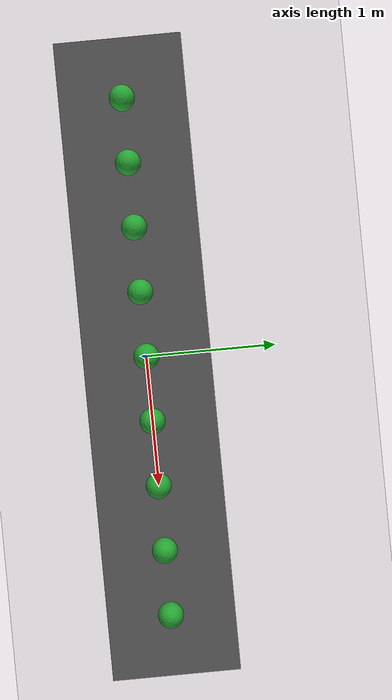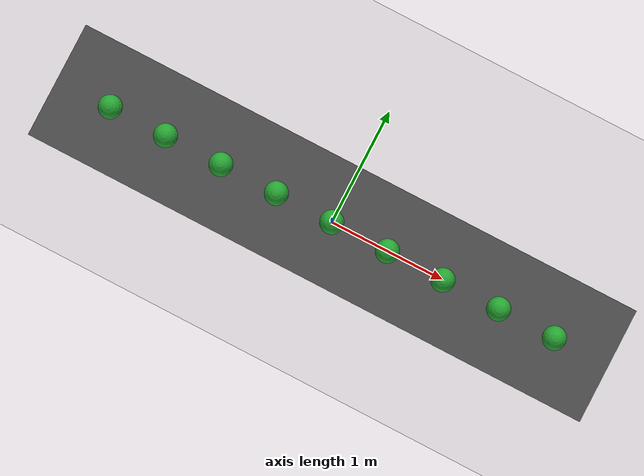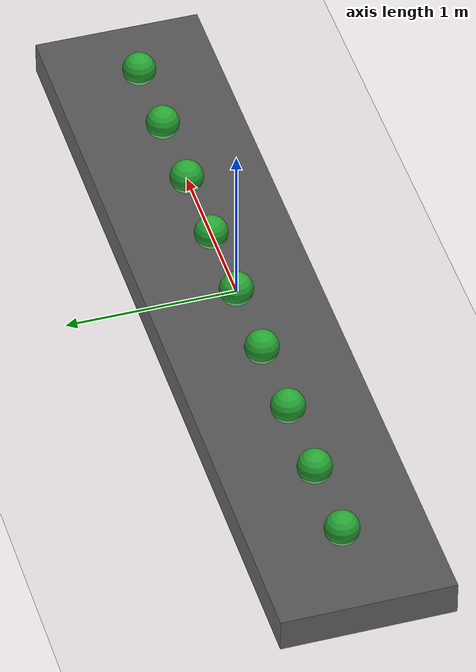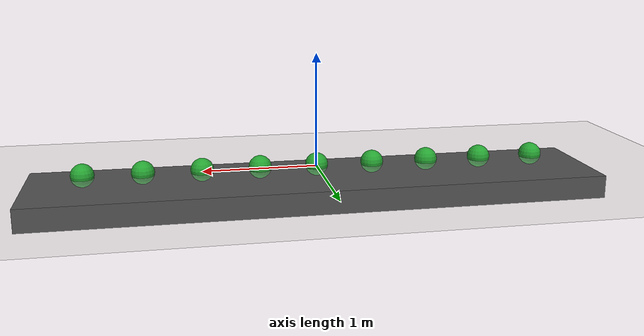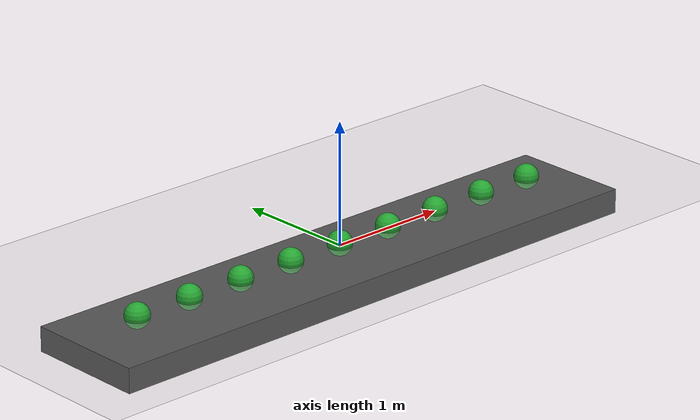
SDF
<?xml version="1.0" ?>
<sdf version="1.5">
  <world name="default">

    <!-- A global light source -->
    <include>
      <uri>model://sun</uri>
    </include>

    <!-- A ground plane -->
    <include>
      <uri>model://ground_plane</uri>
    </include>

    <!-- Testing the automatic population of objects -->
      <model name="pop1">
        <include>
          <static>true</static>
          <uri>model://ex_plant1</uri>
        </include>
      </model>
      <pose>0 0 0 0 0 0</pose>

  </world>
</sdf>

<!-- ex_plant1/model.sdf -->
<sdf version='1.6'>
  <model name='ex_plant1'>
    <link name='link_0'>
      <pose frame=''>0 0 -0.18 0 -0 0</pose>
      <inertial>
        <mass>100</mass>
        <inertia>
          <ixx>0.166667</ixx>
          <ixy>0</ixy>
          <ixz>0</ixz>
          <iyy>0.166667</iyy>
          <iyz>0</iyz>
          <izz>0.166667</izz>
        </inertia>
        <pose frame=''>0 0 0 0 -0 0</pose>
      </inertial>
      <gravity>1</gravity>
      <self_collide>0</self_collide>
      <kinematic>0</kinematic>
      <visual name='visual'>
        <pose frame=''>0 0 0 0 -0 0</pose>
        <geometry>
          <box>
            <size>5 1 0.2</size>
          </box>
        </geometry>
        <material>
          <lighting>1</lighting>
          <script>
            <uri>file://media/materials/scripts/gazebo.material</uri>
            <name>Gazebo/Black</name>
          </script>
          <shader type='pixel'>
            <normal_map>__default__</normal_map>
          </shader>
          <ambient>0.3 0.3 0.3 1</ambient>
          <diffuse>0.7 0.7 0.7 1</diffuse>
          <specular>0.01 0.01 0.01 1</specular>
          <emissive>0 0 0 1</emissive>
        </material>
        <transparency>0</transparency>
        <cast_shadows>1</cast_shadows>
      </visual>
      <collision name='collision'>
        <laser_retro>0</laser_retro>
        <max_contacts>10</max_contacts>
        <pose frame=''>0 0 0 0 -0 0</pose>
        <geometry>
          <box>
            <size>5 1 0.2</size>
          </box>
        </geometry>
        <surface>
          <friction>
            <ode>
              <mu>1</mu>
              <mu2>1</mu2>
              <fdir1>0 0 0</fdir1>
              <slip1>0</slip1>
              <slip2>0</slip2>
            </ode>
            <torsional>
              <coefficient>1</coefficient>
              <patch_radius>0</patch_radius>
              <surface_radius>0</surface_radius>
              <use_patch_radius>1</use_patch_radius>
              <ode>
                <slip>0</slip>
              </ode>
            </torsional>
          </friction>
          <bounce>
            <restitution_coefficient>0</restitution_coefficient>
            <threshold>1e+06</threshold>
          </bounce>
          <contact>
            <collide_without_contact>0</collide_without_contact>
            <collide_without_contact_bitmask>1</collide_without_contact_bitmask>
            <collide_bitmask>1</collide_bitmask>
            <ode>
              <soft_cfm>0</soft_cfm>
              <soft_erp>0.2</soft_erp>
              <kp>1e+13</kp>
              <kd>1</kd>
              <max_vel>0.01</max_vel>
              <min_depth>0</min_depth>
            </ode>
            <bullet>
              <split_impulse>1</split_impulse>
              <split_impulse_penetration_threshold>-0.01</split_impulse_penetration_threshold>
              <soft_cfm>0</soft_cfm>
              <soft_erp>0.2</soft_erp>
              <kp>1e+13</kp>
              <kd>1</kd>
            </bullet>
          </contact>
        </surface>
      </collision>
    </link>
    <link name='link_1'>
      <pose frame=''>-2 0 0.02 0 -0 0</pose>
      <inertial>
        <mass>1</mass>
        <inertia>
          <ixx>0.1</ixx>
          <ixy>0</ixy>
          <ixz>0</ixz>
          <iyy>0.1</iyy>
          <iyz>0</iyz>
          <izz>0.1</izz>
        </inertia>
        <pose frame=''>0 0 0 0 -0 0</pose>
      </inertial>
      <gravity>1</gravity>
      <self_collide>0</self_collide>
      <kinematic>0</kinematic>
      <visual name='visual'>
        <pose frame=''>0 0 0 0 -0 0</pose>
        <geometry>
          <sphere>
            <radius>0.1</radius>
          </sphere>
        </geometry>
        <material>
          <lighting>1</lighting>
          <script>
            <uri>file://media/materials/scripts/gazebo.material</uri>
            <name>Gazebo/Green</name>
          </script>
          <shader type='pixel'>
            <normal_map>__default__</normal_map>
          </shader>
          <ambient>0.3 0.3 0.3 1</ambient>
          <diffuse>0.7 0.7 0.7 1</diffuse>
          <specular>0.01 0.01 0.01 1</specular>
          <emissive>0 0 0 1</emissive>
        </material>
        <transparency>0</transparency>
        <cast_shadows>1</cast_shadows>
      </visual>
      <collision name='collision'>
        <laser_retro>0</laser_retro>
        <max_contacts>10</max_contacts>
        <pose frame=''>0 0 0 0 -0 0</pose>
        <geometry>
          <sphere>
            <radius>0.1</radius>
          </sphere>
        </geometry>
        <surface>
          <friction>
            <ode>
              <mu>1</mu>
              <mu2>1</mu2>
              <fdir1>0 0 0</fdir1>
              <slip1>0</slip1>
              <slip2>0</slip2>
            </ode>
            <torsional>
              <coefficient>1</coefficient>
              <patch_radius>0</patch_radius>
              <surface_radius>0</surface_radius>
              <use_patch_radius>1</use_patch_radius>
              <ode>
                <slip>0</slip>
              </ode>
            </torsional>
          </friction>
          <bounce>
            <restitution_coefficient>0</restitution_coefficient>
            <threshold>1e+06</threshold>
          </bounce>
          <contact>
            <collide_without_contact>0</collide_without_contact>
            <collide_without_contact_bitmask>1</collide_without_contact_bitmask>
            <collide_bitmask>1</collide_bitmask>
            <ode>
              <soft_cfm>0</soft_cfm>
              <soft_erp>0.2</soft_erp>
              <kp>1e+13</kp>
              <kd>1</kd>
              <max_vel>0.01</max_vel>
              <min_depth>0</min_depth>
            </ode>
            <bullet>
              <split_impulse>1</split_impulse>
              <split_impulse_penetration_threshold>-0.01</split_impulse_penetration_threshold>
              <soft_cfm>0</soft_cfm>
              <soft_erp>0.2</soft_erp>
              <kp>1e+13</kp>
              <kd>1</kd>
            </bullet>
          </contact>
        </surface>
      </collision>
    </link>
    <link name='link_1_clone'>
      <pose frame=''>-1.5 0 0.02 0 -0 0</pose>
      <inertial>
        <mass>1</mass>
        <inertia>
          <ixx>0.1</ixx>
          <ixy>0</ixy>
          <ixz>0</ixz>
          <iyy>0.1</iyy>
          <iyz>0</iyz>
          <izz>0.1</izz>
        </inertia>
        <pose frame=''>0 0 0 0 -0 0</pose>
      </inertial>
      <self_collide>0</self_collide>
      <kinematic>0</kinematic>
      <gravity>1</gravity>
      <visual name='visual'>
        <pose frame=''>0 0 0 0 -0 0</pose>
        <geometry>
          <sphere>
            <radius>0.1</radius>
          </sphere>
        </geometry>
        <material>
          <lighting>1</lighting>
          <script>
            <uri>file://media/materials/scripts/gazebo.material</uri>
            <name>Gazebo/Green</name>
          </script>
          <shader type='pixel'>
            <normal_map>__default__</normal_map>
          </shader>
          <ambient>0.3 0.3 0.3 1</ambient>
          <diffuse>0.7 0.7 0.7 1</diffuse>
          <specular>0.01 0.01 0.01 1</specular>
          <emissive>0 0 0 1</emissive>
        </material>
        <transparency>0</transparency>
        <cast_shadows>1</cast_shadows>
      </visual>
      <collision name='collision'>
        <laser_retro>0</laser_retro>
        <max_contacts>10</max_contacts>
        <pose frame=''>0 0 0 0 -0 0</pose>
        <geometry>
          <sphere>
            <radius>0.1</radius>
          </sphere>
        </geometry>
        <surface>
          <friction>
            <ode>
              <mu>1</mu>
              <mu2>1</mu2>
              <fdir1>0 0 0</fdir1>
              <slip1>0</slip1>
              <slip2>0</slip2>
            </ode>
            <torsional>
              <coefficient>1</coefficient>
              <patch_radius>0</patch_radius>
              <surface_radius>0</surface_radius>
              <use_patch_radius>1</use_patch_radius>
              <ode>
                <slip>0</slip>
              </ode>
            </torsional>
          </friction>
          <bounce>
            <restitution_coefficient>0</restitution_coefficient>
            <threshold>1e+06</threshold>
          </bounce>
          <contact>
            <collide_without_contact>0</collide_without_contact>
            <collide_without_contact_bitmask>1</collide_without_contact_bitmask>
            <collide_bitmask>1</collide_bitmask>
            <ode>
              <soft_cfm>0</soft_cfm>
              <soft_erp>0.2</soft_erp>
              <kp>1e+13</kp>
              <kd>1</kd>
              <max_vel>0.01</max_vel>
              <min_depth>0</min_depth>
            </ode>
            <bullet>
              <split_impulse>1</split_impulse>
              <split_impulse_penetration_threshold>-0.01</split_impulse_penetration_threshold>
              <soft_cfm>0</soft_cfm>
              <soft_erp>0.2</soft_erp>
              <kp>1e+13</kp>
              <kd>1</kd>
            </bullet>
          </contact>
        </surface>
      </collision>
    </link>
    <link name='link_1_clone_0'>
      <pose frame=''>-1 0 0.02 0 -0 0</pose>
      <inertial>
        <mass>1</mass>
        <inertia>
          <ixx>0.1</ixx>
          <ixy>0</ixy>
          <ixz>0</ixz>
          <iyy>0.1</iyy>
          <iyz>0</iyz>
          <izz>0.1</izz>
        </inertia>
        <pose frame=''>0 0 0 0 -0 0</pose>
      </inertial>
      <self_collide>0</self_collide>
      <kinematic>0</kinematic>
      <gravity>1</gravity>
      <visual name='visual'>
        <pose frame=''>0 0 0 0 -0 0</pose>
        <geometry>
          <sphere>
            <radius>0.1</radius>
          </sphere>
        </geometry>
        <material>
          <lighting>1</lighting>
          <script>
            <uri>file://media/materials/scripts/gazebo.material</uri>
            <name>Gazebo/Green</name>
          </script>
          <shader type='pixel'>
            <normal_map>__default__</normal_map>
          </shader>
          <ambient>0.3 0.3 0.3 1</ambient>
          <diffuse>0.7 0.7 0.7 1</diffuse>
          <specular>0.01 0.01 0.01 1</specular>
          <emissive>0 0 0 1</emissive>
        </material>
        <transparency>0</transparency>
        <cast_shadows>1</cast_shadows>
      </visual>
      <collision name='collision'>
        <laser_retro>0</laser_retro>
        <max_contacts>10</max_contacts>
        <pose frame=''>0 0 0 0 -0 0</pose>
        <geometry>
          <sphere>
            <radius>0.1</radius>
          </sphere>
        </geometry>
        <surface>
          <friction>
            <ode>
              <mu>1</mu>
              <mu2>1</mu2>
              <fdir1>0 0 0</fdir1>
              <slip1>0</slip1>
              <slip2>0</slip2>
            </ode>
            <torsional>
              <coefficient>1</coefficient>
              <patch_radius>0</patch_radius>
              <surface_radius>0</surface_radius>
              <use_patch_radius>1</use_patch_radius>
              <ode>
                <slip>0</slip>
              </ode>
            </torsional>
          </friction>
          <bounce>
            <restitution_coefficient>0</restitution_coefficient>
            <threshold>1e+06</threshold>
          </bounce>
          <contact>
            <collide_without_contact>0</collide_without_contact>
            <collide_without_contact_bitmask>1</collide_without_contact_bitmask>
            <collide_bitmask>1</collide_bitmask>
            <ode>
              <soft_cfm>0</soft_cfm>
              <soft_erp>0.2</soft_erp>
              <kp>1e+13</kp>
              <kd>1</kd>
              <max_vel>0.01</max_vel>
              <min_depth>0</min_depth>
            </ode>
            <bullet>
              <split_impulse>1</split_impulse>
              <split_impulse_penetration_threshold>-0.01</split_impulse_penetration_threshold>
              <soft_cfm>0</soft_cfm>
              <soft_erp>0.2</soft_erp>
              <kp>1e+13</kp>
              <kd>1</kd>
            </bullet>
          </contact>
        </surface>
      </collision>
    </link>
    <link name='link_1_clone_1'>
      <pose frame=''>-0.5 0 0.02 0 -0 0</pose>
      <inertial>
        <mass>1</mass>
        <inertia>
          <ixx>0.1</ixx>
          <ixy>0</ixy>
          <ixz>0</ixz>
          <iyy>0.1</iyy>
          <iyz>0</iyz>
          <izz>0.1</izz>
        </inertia>
        <pose frame=''>0 0 0 0 -0 0</pose>
      </inertial>
      <self_collide>0</self_collide>
      <kinematic>0</kinematic>
      <gravity>1</gravity>
      <visual name='visual'>
        <pose frame=''>0 0 0 0 -0 0</pose>
        <geometry>
          <sphere>
            <radius>0.1</radius>
          </sphere>
        </geometry>
        <material>
          <lighting>1</lighting>
          <script>
            <uri>file://media/materials/scripts/gazebo.material</uri>
            <name>Gazebo/Green</name>
          </script>
          <shader type='pixel'>
            <normal_map>__default__</normal_map>
          </shader>
          <ambient>0.3 0.3 0.3 1</ambient>
          <diffuse>0.7 0.7 0.7 1</diffuse>
          <specular>0.01 0.01 0.01 1</specular>
          <emissive>0 0 0 1</emissive>
        </material>
        <transparency>0</transparency>
        <cast_shadows>1</cast_shadows>
      </visual>
      <collision name='collision'>
        <laser_retro>0</laser_retro>
        <max_contacts>10</max_contacts>
        <pose frame=''>0 0 0 0 -0 0</pose>
        <geometry>
          <sphere>
            <radius>0.1</radius>
          </sphere>
        </geometry>
        <surface>
          <friction>
            <ode>
              <mu>1</mu>
              <mu2>1</mu2>
              <fdir1>0 0 0</fdir1>
              <slip1>0</slip1>
              <slip2>0</slip2>
            </ode>
            <torsional>
              <coefficient>1</coefficient>
              <patch_radius>0</patch_radius>
              <surface_radius>0</surface_radius>
              <use_patch_radius>1</use_patch_radius>
              <ode>
                <slip>0</slip>
              </ode>
            </torsional>
          </friction>
          <bounce>
            <restitution_coefficient>0</restitution_coefficient>
            <threshold>1e+06</threshold>
          </bounce>
          <contact>
            <collide_without_contact>0</collide_without_contact>
            <collide_without_contact_bitmask>1</collide_without_contact_bitmask>
            <collide_bitmask>1</collide_bitmask>
            <ode>
              <soft_cfm>0</soft_cfm>
              <soft_erp>0.2</soft_erp>
              <kp>1e+13</kp>
              <kd>1</kd>
              <max_vel>0.01</max_vel>
              <min_depth>0</min_depth>
            </ode>
            <bullet>
              <split_impulse>1</split_impulse>
              <split_impulse_penetration_threshold>-0.01</split_impulse_penetration_threshold>
              <soft_cfm>0</soft_cfm>
              <soft_erp>0.2</soft_erp>
              <kp>1e+13</kp>
              <kd>1</kd>
            </bullet>
          </contact>
        </surface>
      </collision>
    </link>
    <link name='link_1_clone_2'>
      <pose frame=''>0.5 0 0.02 0 -0 0</pose>
      <inertial>
        <mass>1</mass>
        <inertia>
          <ixx>0.1</ixx>
          <ixy>0</ixy>
          <ixz>0</ixz>
          <iyy>0.1</iyy>
          <iyz>0</iyz>
          <izz>0.1</izz>
        </inertia>
        <pose frame=''>0 0 0 0 -0 0</pose>
      </inertial>
      <self_collide>0</self_collide>
      <kinematic>0</kinematic>
      <gravity>1</gravity>
      <visual name='visual'>
        <pose frame=''>0 0 0 0 -0 0</pose>
        <geometry>
          <sphere>
            <radius>0.1</radius>
          </sphere>
        </geometry>
        <material>
          <lighting>1</lighting>
          <script>
            <uri>file://media/materials/scripts/gazebo.material</uri>
            <name>Gazebo/Green</name>
          </script>
          <shader type='pixel'>
            <normal_map>__default__</normal_map>
          </shader>
          <ambient>0.3 0.3 0.3 1</ambient>
          <diffuse>0.7 0.7 0.7 1</diffuse>
          <specular>0.01 0.01 0.01 1</specular>
          <emissive>0 0 0 1</emissive>
        </material>
        <transparency>0</transparency>
        <cast_shadows>1</cast_shadows>
      </visual>
      <collision name='collision'>
        <laser_retro>0</laser_retro>
        <max_contacts>10</max_contacts>
        <pose frame=''>0 0 0 0 -0 0</pose>
        <geometry>
          <sphere>
            <radius>0.1</radius>
          </sphere>
        </geometry>
        <surface>
          <friction>
            <ode>
              <mu>1</mu>
              <mu2>1</mu2>
              <fdir1>0 0 0</fdir1>
              <slip1>0</slip1>
              <slip2>0</slip2>
            </ode>
            <torsional>
              <coefficient>1</coefficient>
              <patch_radius>0</patch_radius>
              <surface_radius>0</surface_radius>
              <use_patch_radius>1</use_patch_radius>
              <ode>
                <slip>0</slip>
              </ode>
            </torsional>
          </friction>
          <bounce>
            <restitution_coefficient>0</restitution_coefficient>
            <threshold>1e+06</threshold>
          </bounce>
          <contact>
            <collide_without_contact>0</collide_without_contact>
            <collide_without_contact_bitmask>1</collide_without_contact_bitmask>
            <collide_bitmask>1</collide_bitmask>
            <ode>
              <soft_cfm>0</soft_cfm>
              <soft_erp>0.2</soft_erp>
              <kp>1e+13</kp>
              <kd>1</kd>
              <max_vel>0.01</max_vel>
              <min_depth>0</min_depth>
            </ode>
            <bullet>
              <split_impulse>1</split_impulse>
              <split_impulse_penetration_threshold>-0.01</split_impulse_penetration_threshold>
              <soft_cfm>0</soft_cfm>
              <soft_erp>0.2</soft_erp>
              <kp>1e+13</kp>
              <kd>1</kd>
            </bullet>
          </contact>
        </surface>
      </collision>
    </link>
    <link name='link_1_clone_2_clone'>
      <pose frame=''>1 0 0.02 0 -0 0</pose>
      <inertial>
        <mass>1</mass>
        <inertia>
          <ixx>0.1</ixx>
          <ixy>0</ixy>
          <ixz>0</ixz>
          <iyy>0.1</iyy>
          <iyz>0</iyz>
          <izz>0.1</izz>
        </inertia>
        <pose frame=''>0 0 0 0 -0 0</pose>
      </inertial>
      <self_collide>0</self_collide>
      <kinematic>0</kinematic>
      <gravity>1</gravity>
      <visual name='visual'>
        <pose frame=''>0 0 0 0 -0 0</pose>
        <geometry>
          <sphere>
            <radius>0.1</radius>
          </sphere>
        </geometry>
        <material>
          <lighting>1</lighting>
          <script>
            <uri>file://media/materials/scripts/gazebo.material</uri>
            <name>Gazebo/Green</name>
          </script>
          <shader type='pixel'>
            <normal_map>__default__</normal_map>
          </shader>
          <ambient>0.3 0.3 0.3 1</ambient>
          <diffuse>0.7 0.7 0.7 1</diffuse>
          <specular>0.01 0.01 0.01 1</specular>
          <emissive>0 0 0 1</emissive>
        </material>
        <transparency>0</transparency>
        <cast_shadows>1</cast_shadows>
      </visual>
      <collision name='collision'>
        <laser_retro>0</laser_retro>
        <max_contacts>10</max_contacts>
        <pose frame=''>0 0 0 0 -0 0</pose>
        <geometry>
          <sphere>
            <radius>0.1</radius>
          </sphere>
        </geometry>
        <surface>
          <friction>
            <ode>
              <mu>1</mu>
              <mu2>1</mu2>
              <fdir1>0 0 0</fdir1>
              <slip1>0</slip1>
              <slip2>0</slip2>
            </ode>
            <torsional>
              <coefficient>1</coefficient>
              <patch_radius>0</patch_radius>
              <surface_radius>0</surface_radius>
              <use_patch_radius>1</use_patch_radius>
              <ode>
                <slip>0</slip>
              </ode>
            </torsional>
          </friction>
          <bounce>
            <restitution_coefficient>0</restitution_coefficient>
            <threshold>1e+06</threshold>
          </bounce>
          <contact>
            <collide_without_contact>0</collide_without_contact>
            <collide_without_contact_bitmask>1</collide_without_contact_bitmask>
            <collide_bitmask>1</collide_bitmask>
            <ode>
              <soft_cfm>0</soft_cfm>
              <soft_erp>0.2</soft_erp>
              <kp>1e+13</kp>
              <kd>1</kd>
              <max_vel>0.01</max_vel>
              <min_depth>0</min_depth>
            </ode>
            <bullet>
              <split_impulse>1</split_impulse>
              <split_impulse_penetration_threshold>-0.01</split_impulse_penetration_threshold>
              <soft_cfm>0</soft_cfm>
              <soft_erp>0.2</soft_erp>
              <kp>1e+13</kp>
              <kd>1</kd>
            </bullet>
          </contact>
        </surface>
      </collision>
    </link>
    <link name='link_1_clone_2_clone_0'>
      <pose frame=''>1.5 0 0.02 0 -0 0</pose>
      <inertial>
        <mass>1</mass>
        <inertia>
          <ixx>0.1</ixx>
          <ixy>0</ixy>
          <ixz>0</ixz>
          <iyy>0.1</iyy>
          <iyz>0</iyz>
          <izz>0.1</izz>
        </inertia>
        <pose frame=''>0 0 0 0 -0 0</pose>
      </inertial>
      <self_collide>0</self_collide>
      <kinematic>0</kinematic>
      <gravity>1</gravity>
      <visual name='visual'>
        <pose frame=''>0 0 0 0 -0 0</pose>
        <geometry>
          <sphere>
            <radius>0.1</radius>
          </sphere>
        </geometry>
        <material>
          <lighting>1</lighting>
          <script>
            <uri>file://media/materials/scripts/gazebo.material</uri>
            <name>Gazebo/Green</name>
          </script>
          <shader type='pixel'>
            <normal_map>__default__</normal_map>
          </shader>
          <ambient>0.3 0.3 0.3 1</ambient>
          <diffuse>0.7 0.7 0.7 1</diffuse>
          <specular>0.01 0.01 0.01 1</specular>
          <emissive>0 0 0 1</emissive>
        </material>
        <transparency>0</transparency>
        <cast_shadows>1</cast_shadows>
      </visual>
      <collision name='collision'>
        <laser_retro>0</laser_retro>
        <max_contacts>10</max_contacts>
        <pose frame=''>0 0 0 0 -0 0</pose>
        <geometry>
          <sphere>
            <radius>0.1</radius>
          </sphere>
        </geometry>
        <surface>
          <friction>
            <ode>
              <mu>1</mu>
              <mu2>1</mu2>
              <fdir1>0 0 0</fdir1>
              <slip1>0</slip1>
              <slip2>0</slip2>
            </ode>
            <torsional>
              <coefficient>1</coefficient>
              <patch_radius>0</patch_radius>
              <surface_radius>0</surface_radius>
              <use_patch_radius>1</use_patch_radius>
              <ode>
                <slip>0</slip>
              </ode>
            </torsional>
          </friction>
          <bounce>
            <restitution_coefficient>0</restitution_coefficient>
            <threshold>1e+06</threshold>
          </bounce>
          <contact>
            <collide_without_contact>0</collide_without_contact>
            <collide_without_contact_bitmask>1</collide_without_contact_bitmask>
            <collide_bitmask>1</collide_bitmask>
            <ode>
              <soft_cfm>0</soft_cfm>
              <soft_erp>0.2</soft_erp>
              <kp>1e+13</kp>
              <kd>1</kd>
              <max_vel>0.01</max_vel>
              <min_depth>0</min_depth>
            </ode>
            <bullet>
              <split_impulse>1</split_impulse>
              <split_impulse_penetration_threshold>-0.01</split_impulse_penetration_threshold>
              <soft_cfm>0</soft_cfm>
              <soft_erp>0.2</soft_erp>
              <kp>1e+13</kp>
              <kd>1</kd>
            </bullet>
          </contact>
        </surface>
      </collision>
    </link>
    <link name='link_1_clone_2_clone_1'>
      <pose frame=''>2 0 0.02 0 -0 0</pose>
      <inertial>
        <mass>1</mass>
        <inertia>
          <ixx>0.1</ixx>
          <ixy>0</ixy>
          <ixz>0</ixz>
          <iyy>0.1</iyy>
          <iyz>0</iyz>
          <izz>0.1</izz>
        </inertia>
        <pose frame=''>0 0 0 0 -0 0</pose>
      </inertial>
      <self_collide>0</self_collide>
      <kinematic>0</kinematic>
      <gravity>1</gravity>
      <visual name='visual'>
        <pose frame=''>0 0 0 0 -0 0</pose>
        <geometry>
          <sphere>
            <radius>0.1</radius>
          </sphere>
        </geometry>
        <material>
          <lighting>1</lighting>
          <script>
            <uri>file://media/materials/scripts/gazebo.material</uri>
            <name>Gazebo/Green</name>
          </script>
          <shader type='pixel'>
            <normal_map>__default__</normal_map>
          </shader>
          <ambient>0.3 0.3 0.3 1</ambient>
          <diffuse>0.7 0.7 0.7 1</diffuse>
          <specular>0.01 0.01 0.01 1</specular>
          <emissive>0 0 0 1</emissive>
        </material>
        <transparency>0</transparency>
        <cast_shadows>1</cast_shadows>
      </visual>
      <collision name='collision'>
        <laser_retro>0</laser_retro>
        <max_contacts>10</max_contacts>
        <pose frame=''>0 0 0 0 -0 0</pose>
        <geometry>
          <sphere>
            <radius>0.1</radius>
          </sphere>
        </geometry>
        <surface>
          <friction>
            <ode>
              <mu>1</mu>
              <mu2>1</mu2>
              <fdir1>0 0 0</fdir1>
              <slip1>0</slip1>
              <slip2>0</slip2>
            </ode>
            <torsional>
              <coefficient>1</coefficient>
              <patch_radius>0</patch_radius>
              <surface_radius>0</surface_radius>
              <use_patch_radius>1</use_patch_radius>
              <ode>
                <slip>0</slip>
              </ode>
            </torsional>
          </friction>
          <bounce>
            <restitution_coefficient>0</restitution_coefficient>
            <threshold>1e+06</threshold>
          </bounce>
          <contact>
            <collide_without_contact>0</collide_without_contact>
            <collide_without_contact_bitmask>1</collide_without_contact_bitmask>
            <collide_bitmask>1</collide_bitmask>
            <ode>
              <soft_cfm>0</soft_cfm>
              <soft_erp>0.2</soft_erp>
              <kp>1e+13</kp>
              <kd>1</kd>
              <max_vel>0.01</max_vel>
              <min_depth>0</min_depth>
            </ode>
            <bullet>
              <split_impulse>1</split_impulse>
              <split_impulse_penetration_threshold>-0.01</split_impulse_penetration_threshold>
              <soft_cfm>0</soft_cfm>
              <soft_erp>0.2</soft_erp>
              <kp>1e+13</kp>
              <kd>1</kd>
            </bullet>
          </contact>
        </surface>
      </collision>
    </link>
    <link name='link_1_clone_3'>
      <pose frame=''>0 0 0.02 0 -0 0</pose>
      <inertial>
        <mass>1</mass>
        <inertia>
          <ixx>0.1</ixx>
          <ixy>0</ixy>
          <ixz>0</ixz>
          <iyy>0.1</iyy>
          <iyz>0</iyz>
          <izz>0.1</izz>
        </inertia>
        <pose frame=''>0 0 0 0 -0 0</pose>
      </inertial>
      <self_collide>0</self_collide>
      <kinematic>0</kinematic>
      <gravity>1</gravity>
      <visual name='visual'>
        <pose frame=''>0 0 0 0 -0 0</pose>
        <geometry>
          <sphere>
            <radius>0.1</radius>
          </sphere>
        </geometry>
        <material>
          <lighting>1</lighting>
          <script>
            <uri>file://media/materials/scripts/gazebo.material</uri>
            <name>Gazebo/Green</name>
          </script>
          <shader type='pixel'>
            <normal_map>__default__</normal_map>
          </shader>
          <ambient>0.3 0.3 0.3 1</ambient>
          <diffuse>0.7 0.7 0.7 1</diffuse>
          <specular>0.01 0.01 0.01 1</specular>
          <emissive>0 0 0 1</emissive>
        </material>
        <transparency>0</transparency>
        <cast_shadows>1</cast_shadows>
      </visual>
      <collision name='collision'>
        <laser_retro>0</laser_retro>
        <max_contacts>10</max_contacts>
        <pose frame=''>0 0 0 0 -0 0</pose>
        <geometry>
          <sphere>
            <radius>0.1</radius>
          </sphere>
        </geometry>
        <surface>
          <friction>
            <ode>
              <mu>1</mu>
              <mu2>1</mu2>
              <fdir1>0 0 0</fdir1>
              <slip1>0</slip1>
              <slip2>0</slip2>
            </ode>
            <torsional>
              <coefficient>1</coefficient>
              <patch_radius>0</patch_radius>
              <surface_radius>0</surface_radius>
              <use_patch_radius>1</use_patch_radius>
              <ode>
                <slip>0</slip>
              </ode>
            </torsional>
          </friction>
          <bounce>
            <restitution_coefficient>0</restitution_coefficient>
            <threshold>1e+06</threshold>
          </bounce>
          <contact>
            <collide_without_contact>0</collide_without_contact>
            <collide_without_contact_bitmask>1</collide_without_contact_bitmask>
            <collide_bitmask>1</collide_bitmask>
            <ode>
              <soft_cfm>0</soft_cfm>
              <soft_erp>0.2</soft_erp>
              <kp>1e+13</kp>
              <kd>1</kd>
              <max_vel>0.01</max_vel>
              <min_depth>0</min_depth>
            </ode>
            <bullet>
              <split_impulse>1</split_impulse>
              <split_impulse_penetration_threshold>-0.01</split_impulse_penetration_threshold>
              <soft_cfm>0</soft_cfm>
              <soft_erp>0.2</soft_erp>
              <kp>1e+13</kp>
              <kd>1</kd>
            </bullet>
          </contact>
        </surface>
      </collision>
    </link>
    <joint name='link_0_JOINT_0' type='fixed'>
      <parent>link_0</parent>
      <child>link_1</child>
      <pose frame=''>0 0 0 0 -0 0</pose>
      <physics>
        <ode>
          <limit>
            <cfm>0</cfm>
            <erp>0.2</erp>
          </limit>
          <suspension>
            <cfm>0</cfm>
            <erp>0.2</erp>
          </suspension>
        </ode>
      </physics>
    </joint>
    <joint name='link_0_JOINT_1' type='revolute'>
      <parent>link_0</parent>
      <child>link_1_clone</child>
      <pose frame=''>0 0 0 0 -0 0</pose>
      <axis>
        <xyz>1 0 0</xyz>
        <use_parent_model_frame>0</use_parent_model_frame>
        <limit>
          <lower>-1.79769e+308</lower>
          <upper>1.79769e+308</upper>
          <effort>-1</effort>
          <velocity>-1</velocity>
        </limit>
        <dynamics>
          <spring_reference>0</spring_reference>
          <spring_stiffness>0</spring_stiffness>
          <damping>0</damping>
        </dynamics>
      </axis>
      <physics>
        <ode>
          <limit>
            <cfm>0</cfm>
            <erp>0.2</erp>
          </limit>
          <suspension>
            <cfm>0</cfm>
            <erp>0.2</erp>
          </suspension>
        </ode>
      </physics>
    </joint>
    <joint name='link_0_JOINT_2' type='revolute'>
      <parent>link_0</parent>
      <child>link_1_clone_0</child>
      <pose frame=''>0 0 0 0 -0 0</pose>
      <axis>
        <xyz>1 0 0</xyz>
        <use_parent_model_frame>0</use_parent_model_frame>
        <limit>
          <lower>-1.79769e+308</lower>
          <upper>1.79769e+308</upper>
          <effort>-1</effort>
          <velocity>-1</velocity>
        </limit>
        <dynamics>
          <spring_reference>0</spring_reference>
          <spring_stiffness>0</spring_stiffness>
          <damping>0</damping>
        </dynamics>
      </axis>
      <physics>
        <ode>
          <limit>
            <cfm>0</cfm>
            <erp>0.2</erp>
          </limit>
          <suspension>
            <cfm>0</cfm>
            <erp>0.2</erp>
          </suspension>
        </ode>
      </physics>
    </joint>
    <joint name='link_0_JOINT_3' type='revolute'>
      <parent>link_0</parent>
      <child>link_1_clone_1</child>
      <pose frame=''>0 0 0 0 -0 0</pose>
      <axis>
        <xyz>1 0 0</xyz>
        <use_parent_model_frame>0</use_parent_model_frame>
        <limit>
          <lower>-1.79769e+308</lower>
          <upper>1.79769e+308</upper>
          <effort>-1</effort>
          <velocity>-1</velocity>
        </limit>
        <dynamics>
          <spring_reference>0</spring_reference>
          <spring_stiffness>0</spring_stiffness>
          <damping>0</damping>
        </dynamics>
      </axis>
      <physics>
        <ode>
          <limit>
            <cfm>0</cfm>
            <erp>0.2</erp>
          </limit>
          <suspension>
            <cfm>0</cfm>
            <erp>0.2</erp>
          </suspension>
        </ode>
      </physics>
    </joint>
    <joint name='link_0_JOINT_4' type='revolute'>
      <parent>link_0</parent>
      <child>link_1_clone_3</child>
      <pose frame=''>0 0 0 0 -0 0</pose>
      <axis>
        <xyz>1 0 0</xyz>
        <use_parent_model_frame>0</use_parent_model_frame>
        <limit>
          <lower>-1.79769e+308</lower>
          <upper>1.79769e+308</upper>
          <effort>-1</effort>
          <velocity>-1</velocity>
        </limit>
        <dynamics>
          <spring_reference>0</spring_reference>
          <spring_stiffness>0</spring_stiffness>
          <damping>0</damping>
        </dynamics>
      </axis>
      <physics>
        <ode>
          <limit>
            <cfm>0</cfm>
            <erp>0.2</erp>
          </limit>
          <suspension>
            <cfm>0</cfm>
            <erp>0.2</erp>
          </suspension>
        </ode>
      </physics>
    </joint>
    <joint name='link_0_JOINT_5' type='revolute'>
      <parent>link_0</parent>
      <child>link_1_clone_2</child>
      <pose frame=''>0 0 0 0 -0 0</pose>
      <axis>
        <xyz>1 0 0</xyz>
        <use_parent_model_frame>0</use_parent_model_frame>
        <limit>
          <lower>-1.79769e+308</lower>
          <upper>1.79769e+308</upper>
          <effort>-1</effort>
          <velocity>-1</velocity>
        </limit>
        <dynamics>
          <spring_reference>0</spring_reference>
          <spring_stiffness>0</spring_stiffness>
          <damping>0</damping>
        </dynamics>
      </axis>
      <physics>
        <ode>
          <limit>
            <cfm>0</cfm>
            <erp>0.2</erp>
          </limit>
          <suspension>
            <cfm>0</cfm>
            <erp>0.2</erp>
          </suspension>
        </ode>
      </physics>
    </joint>
    <joint name='link_0_JOINT_6' type='revolute'>
      <parent>link_0</parent>
      <child>link_1_clone_2_clone</child>
      <pose frame=''>0 0 0 0 -0 0</pose>
      <axis>
        <xyz>1 0 0</xyz>
        <use_parent_model_frame>0</use_parent_model_frame>
        <limit>
          <lower>-1.79769e+308</lower>
          <upper>1.79769e+308</upper>
          <effort>-1</effort>
          <velocity>-1</velocity>
        </limit>
        <dynamics>
          <spring_reference>0</spring_reference>
          <spring_stiffness>0</spring_stiffness>
          <damping>0</damping>
        </dynamics>
      </axis>
      <physics>
        <ode>
          <limit>
            <cfm>0</cfm>
            <erp>0.2</erp>
          </limit>
          <suspension>
            <cfm>0</cfm>
            <erp>0.2</erp>
          </suspension>
        </ode>
      </physics>
    </joint>
    <joint name='link_0_JOINT_7' type='revolute'>
      <parent>link_0</parent>
      <child>link_1_clone_2_clone_0</child>
      <pose frame=''>0 0 0 0 -0 0</pose>
      <axis>
        <xyz>1 0 0</xyz>
        <use_parent_model_frame>0</use_parent_model_frame>
        <limit>
          <lower>-1.79769e+308</lower>
          <upper>1.79769e+308</upper>
          <effort>-1</effort>
          <velocity>-1</velocity>
        </limit>
        <dynamics>
          <spring_reference>0</spring_reference>
          <spring_stiffness>0</spring_stiffness>
          <damping>0</damping>
        </dynamics>
      </axis>
      <physics>
        <ode>
          <limit>
            <cfm>0</cfm>
            <erp>0.2</erp>
          </limit>
          <suspension>
            <cfm>0</cfm>
            <erp>0.2</erp>
          </suspension>
        </ode>
      </physics>
    </joint>
    <joint name='link_0_JOINT_8' type='revolute'>
      <parent>link_0</parent>
      <child>link_1_clone_2_clone_1</child>
      <pose frame=''>0 0 0 0 -0 0</pose>
      <axis>
        <xyz>1 0 0</xyz>
        <use_parent_model_frame>0</use_parent_model_frame>
        <limit>
          <lower>-1.79769e+308</lower>
          <upper>1.79769e+308</upper>
          <effort>-1</effort>
          <velocity>-1</velocity>
        </limit>
        <dynamics>
          <spring_reference>0</spring_reference>
          <spring_stiffness>0</spring_stiffness>
          <damping>0</damping>
        </dynamics>
      </axis>
      <physics>
        <ode>
          <limit>
            <cfm>0</cfm>
            <erp>0.2</erp>
          </limit>
          <suspension>
            <cfm>0</cfm>
            <erp>0.2</erp>
          </suspension>
        </ode>
      </physics>
    </joint>
    <static>0</static>
    <allow_auto_disable>1</allow_auto_disable>
  </model>
</sdf>
